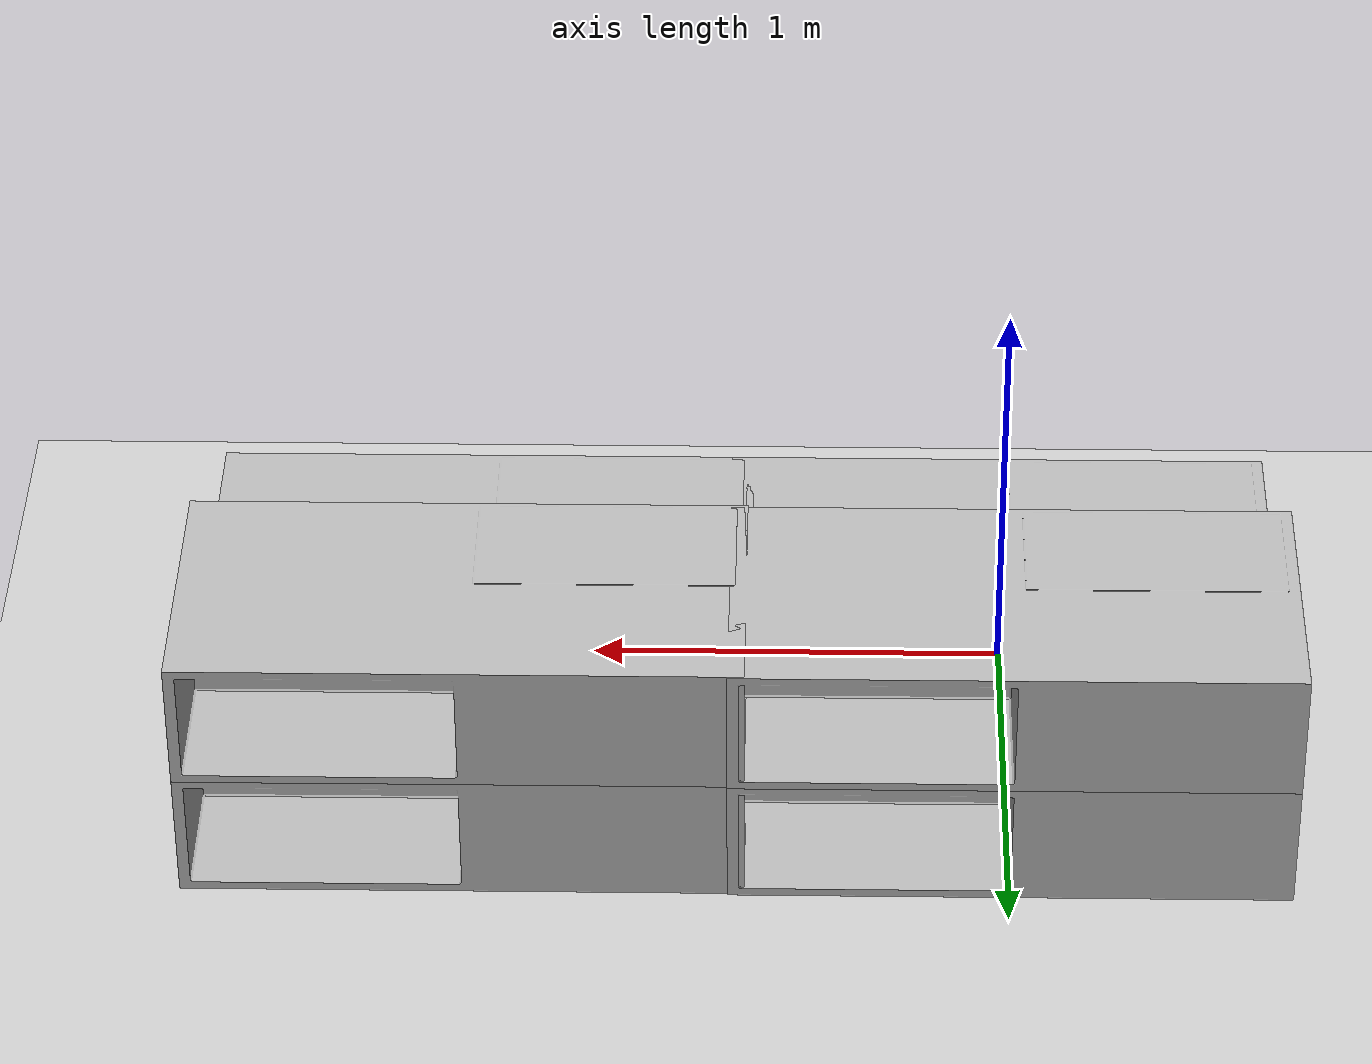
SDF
<sdf version='1.9'>
  <world name='empty_world'>
    <gravity>0 0 -9.8</gravity>
    <magnetic_field>6e-06 2.3e-05 -4.2e-05</magnetic_field>
    <atmosphere type='adiabatic'/>
    <physics type='ode'>
      <max_step_size>0.001</max_step_size>
      <real_time_factor>1</real_time_factor>
      <real_time_update_rate>1000</real_time_update_rate>
    </physics>
    <scene>
      <ambient>0.4 0.4 0.4 1</ambient>
      <background>0.7 0.7 0.7 1</background>
      <shadows>true</shadows>
    </scene>
    <model name='CoffeeTable_1'>
      <static>true</static>
      <model name='aws_robomaker_residential_CoffeeTable_01'>
        <link name='link'>
          <inertial>
            <mass>21.699999999999999</mass>
            <inertia>
              <ixx>0.81374999999999975</ixx>
              <ixy>0</ixy>
              <ixz>0</ixz>
              <iyy>2.76675</iyy>
              <iyz>0</iyz>
              <izz>3.254</izz>
            </inertia>
          </inertial>
          <collision name='collision'>
            <geometry>
              <mesh>
                <uri>model://aws_robomaker_residential_CoffeeTable_01/meshes/aws_CoffeeTable_01_collision.DAE</uri>
                <scale>1 1 1</scale>
              </mesh>
            </geometry>
            <surface>
              <contact>
                <ode>
                  <max_vel>0.01</max_vel>
                </ode>
              </contact>
            </surface>
          </collision>
          <visual name='visual'>
            <geometry>
              <mesh>
                <uri>model://aws_robomaker_residential_CoffeeTable_01/meshes/aws_CoffeeTable_01_visual.DAE</uri>
              </mesh>
            </geometry>
            <meta>
              <layer>1</layer>
            </meta>
          </visual>
        </link>
        <static>true</static>
      </model>
      <pose>0 0 0.041983 0 -0 0</pose>
      <self_collide>false</self_collide>
    </model>
    <model name='CoffeeTable_2'>
      <static>true</static>
      <model name='aws_robomaker_residential_CoffeeTable_01'>
        <link name='link'>
          <inertial>
            <mass>21.699999999999999</mass>
            <inertia>
              <ixx>0.81374999999999975</ixx>
              <ixy>0</ixy>
              <ixz>0</ixz>
              <iyy>2.76675</iyy>
              <iyz>0</iyz>
              <izz>3.254</izz>
            </inertia>
          </inertial>
          <collision name='collision'>
            <geometry>
              <mesh>
                <uri>model://aws_robomaker_residential_CoffeeTable_01/meshes/aws_CoffeeTable_01_collision.DAE</uri>
                <scale>1 1 1</scale>
              </mesh>
            </geometry>
            <surface>
              <contact>
                <ode>
                  <max_vel>0.01</max_vel>
                </ode>
              </contact>
            </surface>
          </collision>
          <visual name='visual'>
            <geometry>
              <mesh>
                <uri>model://aws_robomaker_residential_CoffeeTable_01/meshes/aws_CoffeeTable_01_visual.DAE</uri>
              </mesh>
            </geometry>
            <meta>
              <layer>1</layer>
            </meta>
          </visual>
        </link>
        <static>true</static>
      </model>
      <pose>1.2577 0 0.041983 0 -0 0</pose>
      <self_collide>false</self_collide>
    </model>
    <model name='CoffeeTable_3'>
      <static>true</static>
      <model name='aws_robomaker_residential_CoffeeTable_01'>
        <link name='link'>
          <inertial>
            <mass>21.699999999999999</mass>
            <inertia>
              <ixx>0.81374999999999975</ixx>
              <ixy>0</ixy>
              <ixz>0</ixz>
              <iyy>2.76675</iyy>
              <iyz>0</iyz>
              <izz>3.254</izz>
            </inertia>
          </inertial>
          <collision name='collision'>
            <geometry>
              <mesh>
                <uri>model://aws_robomaker_residential_CoffeeTable_01/meshes/aws_CoffeeTable_01_collision.DAE</uri>
                <scale>1 1 1</scale>
              </mesh>
            </geometry>
            <surface>
              <contact>
                <ode>
                  <max_vel>0.01</max_vel>
                </ode>
              </contact>
            </surface>
          </collision>
          <visual name='visual'>
            <geometry>
              <mesh>
                <uri>model://aws_robomaker_residential_CoffeeTable_01/meshes/aws_CoffeeTable_01_visual.DAE</uri>
              </mesh>
            </geometry>
            <meta>
              <layer>1</layer>
            </meta>
          </visual>
        </link>
        <static>true</static>
      </model>
      <pose>1.26554 0.637963 0.041983 0 -0 0</pose>
      <self_collide>false</self_collide>
    </model>
    <model name='CoffeeTable_4'>
      <static>true</static>
      <model name='aws_robomaker_residential_CoffeeTable_01'>
        <link name='link'>
          <inertial>
            <mass>21.699999999999999</mass>
            <inertia>
              <ixx>0.81374999999999975</ixx>
              <ixy>0</ixy>
              <ixz>0</ixz>
              <iyy>2.76675</iyy>
              <iyz>0</iyz>
              <izz>3.254</izz>
            </inertia>
          </inertial>
          <collision name='collision'>
            <geometry>
              <mesh>
                <uri>model://aws_robomaker_residential_CoffeeTable_01/meshes/aws_CoffeeTable_01_collision.DAE</uri>
                <scale>1 1 1</scale>
              </mesh>
            </geometry>
            <surface>
              <contact>
                <ode>
                  <max_vel>0.01</max_vel>
                </ode>
              </contact>
            </surface>
          </collision>
          <visual name='visual'>
            <geometry>
              <mesh>
                <uri>model://aws_robomaker_residential_CoffeeTable_01/meshes/aws_CoffeeTable_01_visual.DAE</uri>
              </mesh>
            </geometry>
            <meta>
              <layer>1</layer>
            </meta>
          </visual>
        </link>
        <static>true</static>
      </model>
      <pose>-0.008642 0.643146 0.041983 0 -0 0</pose>
      <self_collide>false</self_collide>
    </model>
    <model name='ground_plane'>
      <static>true</static>
      <link name='link'>
        <collision name='collision'>
          <geometry>
            <plane>
              <normal>0 0 1</normal>
              <size>1 1</size>
            </plane>
          </geometry>
          <surface>
            <friction>
              <ode/>
            </friction>
            <bounce/>
            <contact/>
          </surface>
        </collision>
        <visual name='visual'>
          <geometry>
            <plane>
              <normal>0 0 1</normal>
              <size>100 100</size>
            </plane>
          </geometry>
          <material>
            <ambient>0.8 0.8 0.8 1</ambient>
            <diffuse>0.8 0.8 0.8 1</diffuse>
            <specular>0.8 0.8 0.8 1</specular>
          </material>
        </visual>
        <pose>0 0 0 0 -0 0</pose>
        <inertial>
          <pose>0 0 0 0 -0 0</pose>
          <mass>1</mass>
          <inertia>
            <ixx>1</ixx>
            <ixy>0</ixy>
            <ixz>0</ixz>
            <iyy>1</iyy>
            <iyz>0</iyz>
            <izz>1</izz>
          </inertia>
        </inertial>
        <enable_wind>false</enable_wind>
      </link>
      <pose>0.5 0 0 0 -0 0</pose>
      <self_collide>false</self_collide>
    </model>
    <model name='aws_robomaker_residential_CoffeeTable_01'>
      <link name='link'>
        <inertial>
          <mass>21.699999999999999</mass>
          <inertia>
            <ixx>0.81374999999999997</ixx>
            <ixy>0</ixy>
            <ixz>0</ixz>
            <iyy>2.76675</iyy>
            <iyz>0</iyz>
            <izz>3.254</izz>
          </inertia>
          <pose>0 0 0 0 -0 0</pose>
        </inertial>
        <collision name='collision'>
          <geometry>
            <mesh>
              <uri>file:///home/max/medical_robot_shared_control/panda_ws/install/panda_description/share/panda_description/models/aws_robomaker_residential_CoffeeTable_01/model://aws_robomaker_residential_CoffeeTable_01/meshes/aws_CoffeeTable_01_collision.DAE</uri>
              <scale>1 1 1</scale>
            </mesh>
          </geometry>
          <surface>
            <contact>
              <ode>
                <max_vel>0.01</max_vel>
              </ode>
            </contact>
          </surface>
        </collision>
        <visual name='visual'>
          <geometry>
            <mesh>
              <uri>file:///home/max/medical_robot_shared_control/panda_ws/install/panda_description/share/panda_description/models/aws_robomaker_residential_CoffeeTable_01/model://aws_robomaker_residential_CoffeeTable_01/meshes/aws_CoffeeTable_01_visual.DAE</uri>
            </mesh>
          </geometry>
          <meta>
            <layer>1</layer>
          </meta>
        </visual>
        <pose>0 0 0 0 -0 0</pose>
        <enable_wind>false</enable_wind>
      </link>
      <static>true</static>
      <pose>-0.008642 0.643146 0.36 0 -0 0</pose>
      <self_collide>false</self_collide>
    </model>
    <model name='aws_robomaker_residential_CoffeeTable_01_0'>
      <link name='link'>
        <inertial>
          <mass>21.699999999999999</mass>
          <inertia>
            <ixx>0.81374999999999997</ixx>
            <ixy>0</ixy>
            <ixz>0</ixz>
            <iyy>2.76675</iyy>
            <iyz>0</iyz>
            <izz>3.254</izz>
          </inertia>
          <pose>0 0 0 0 -0 0</pose>
        </inertial>
        <collision name='collision'>
          <geometry>
            <mesh>
              <uri>file:///home/max/medical_robot_shared_control/panda_ws/install/panda_description/share/panda_description/models/aws_robomaker_residential_CoffeeTable_01/model://aws_robomaker_residential_CoffeeTable_01/meshes/aws_CoffeeTable_01_collision.DAE</uri>
              <scale>1 1 1</scale>
            </mesh>
          </geometry>
          <surface>
            <contact>
              <ode>
                <max_vel>0.01</max_vel>
              </ode>
            </contact>
          </surface>
        </collision>
        <visual name='visual'>
          <geometry>
            <mesh>
              <uri>file:///home/max/medical_robot_shared_control/panda_ws/install/panda_description/share/panda_description/models/aws_robomaker_residential_CoffeeTable_01/model://aws_robomaker_residential_CoffeeTable_01/meshes/aws_CoffeeTable_01_visual.DAE</uri>
            </mesh>
          </geometry>
          <meta>
            <layer>1</layer>
          </meta>
        </visual>
        <pose>0 0 0 0 -0 0</pose>
        <enable_wind>false</enable_wind>
      </link>
      <static>true</static>
      <pose>1.26554 0.637963 0.36 0 -0 0</pose>
      <self_collide>false</self_collide>
    </model>
    <light name='sun' type='directional'>
      <pose>0 0 10 0 -0 0</pose>
      <cast_shadows>true</cast_shadows>
      <intensity>1</intensity>
      <direction>-0.5 0.1 -0.9</direction>
      <diffuse>0.8 0.8 0.8 1</diffuse>
      <specular>0.2 0.2 0.2 1</specular>
      <attenuation>
        <range>1000</range>
        <linear>0.01</linear>
        <constant>0.90000000000000002</constant>
        <quadratic>0.001</quadratic>
      </attenuation>
      <spot>
        <inner_angle>0</inner_angle>
        <outer_angle>0</outer_angle>
        <falloff>0</falloff>
      </spot>
    </light>
  </world>
</sdf>
